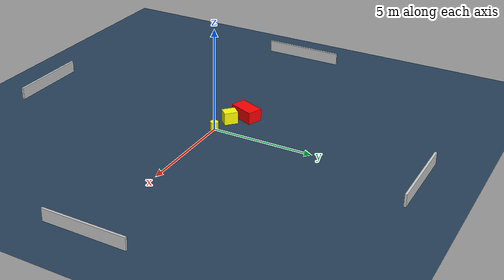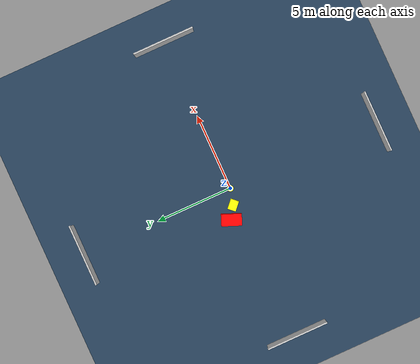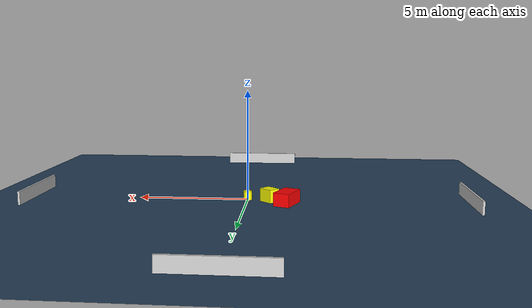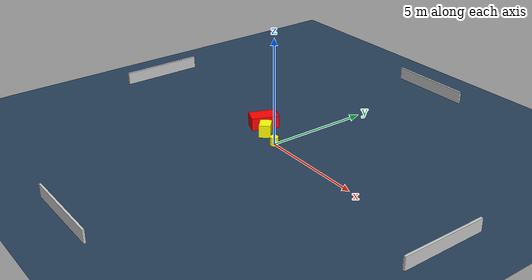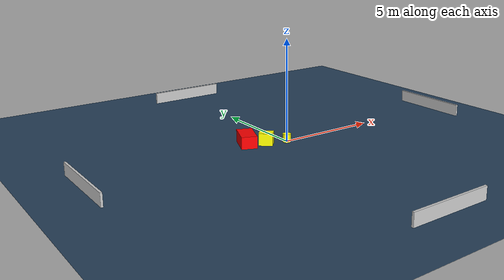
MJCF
<?xml version="1.0" ?>
<mujoco model="generated_environment">
  <option timestep="0.01" integrator="RK4" cone="elliptic"/>
  <default>
    <geom density="1"/>
  </default>
  <asset>
    <texture builtin="gradient" height="3072" name="skybox" rgb1="0.3 0.5 0.7" rgb2="0 0 0" type="skybox" width="512"/>
    <texture builtin="checker" height="300" name="groundplane" rgb1="0.2 0.3 0.4" rgb2="0.1 0.2 0.3" type="2d" width="300"/>
    <material name="groundplane" reflectance="0.2" texrepeat="5 5" texture="groundplane"/>
  </asset>
  <worldbody>
    <light dir="0 0 -1" directional="true" pos="0 0 1.5"/>
    <geom condim="3" friction="0.5 0.005 0.001" material="groundplane" name="floor" pos="0 0 0" size="0 0 0.05" type="plane"/>
    <body name="walls">
      <geom name="wall_1" condim="4" pos="-10.0 0.0 0.3" rgba="0.800000011920929 0.800000011920929 0.800000011920929 1.0" size="0.05 2.0 0.3" type="box"/>
      <geom name="wall_2" condim="4" pos="10.0 0.0 0.3" rgba="0.800000011920929 0.800000011920929 0.800000011920929 1.0" size="0.05 2.0 0.3" type="box"/>
      <geom name="wall_3" condim="4" pos="0.0 -10.0 0.3" rgba="0.800000011920929 0.800000011920929 0.800000011920929 1.0" size="2.0 0.05 0.3" type="box"/>
      <geom name="wall_4" condim="4" pos="0.0 10.0 0.3" rgba="0.800000011920929 0.800000011920929 0.800000011920929 1.0" size="2.0 0.05 0.3" type="box"/>
    </body>
    <body name="robot">
      <joint name="joint_x" type="slide" pos="0 0 0" axis="1 0 0"/>
      <joint name="joint_y" type="slide" pos="0 0 0" axis="0 1 0"/>
      <geom name="robot" type="cylinder" pos="0.0 0.0 0.2" size="0.2 0.2 0.0" mass="5.0" friction="1.0 0.005 0.0001" condim="4" rgba="1.0 1.0 0.0 1.0"/>
    </body>
    <body name="obstacle_1_movable">
      <geom name="obstacle_1_movable" condim="4" pos="-1.015988782292192 0.2676282850571629 0.3" euler="0 0 136.75609031957285" friction="0.0 0.005 0.001" rgba="1.0 1.0 0.0 1.0" size="0.33315142158732625 0.26817546221721184 0.3" type="box" mass="0.1"/>
      <joint type="free"/>
    </body>
    <body name="obstacle_2_static">
      <geom name="obstacle_2_static" condim="4" pos="-1.8072949064419852 0.7435550618439511 0.3" euler="0 0 248.24173722724828" friction="0.0 0.005 0.001" rgba="1.0 0.0 0.0 1.0" size="0.6436891100923887 0.3763762253169415 0.3" type="box"/>
    </body>
  </worldbody>
  <actuator>
    <motor name="actuator_x" joint="joint_x" gear="1" ctrlrange="-1 1"/>
    <motor name="actuator_y" joint="joint_y" gear="1" ctrlrange="-1 1"/>
  </actuator>
</mujoco>
